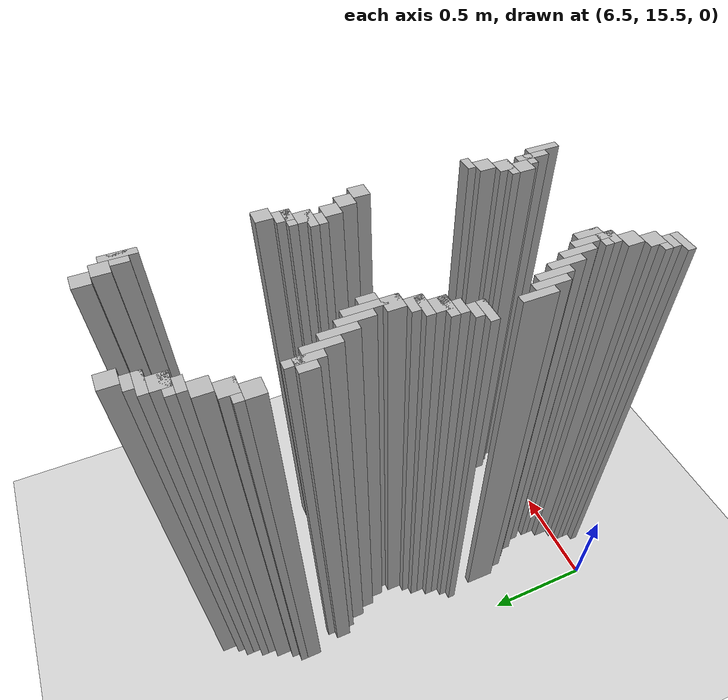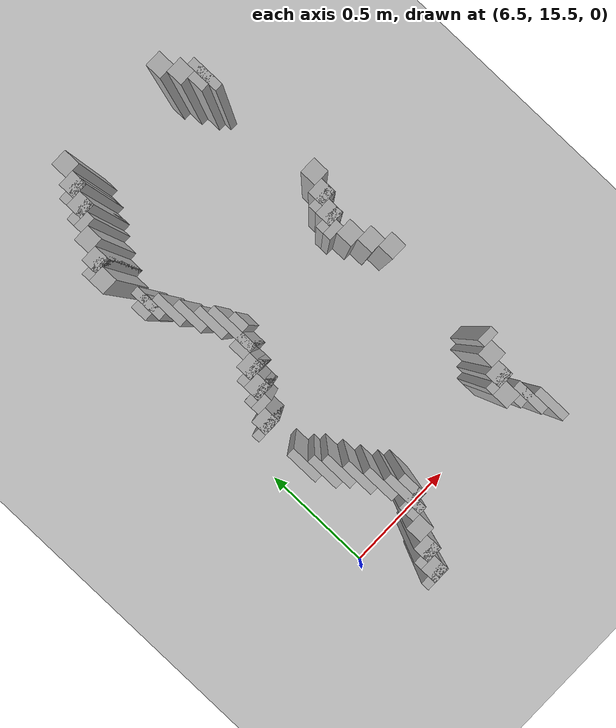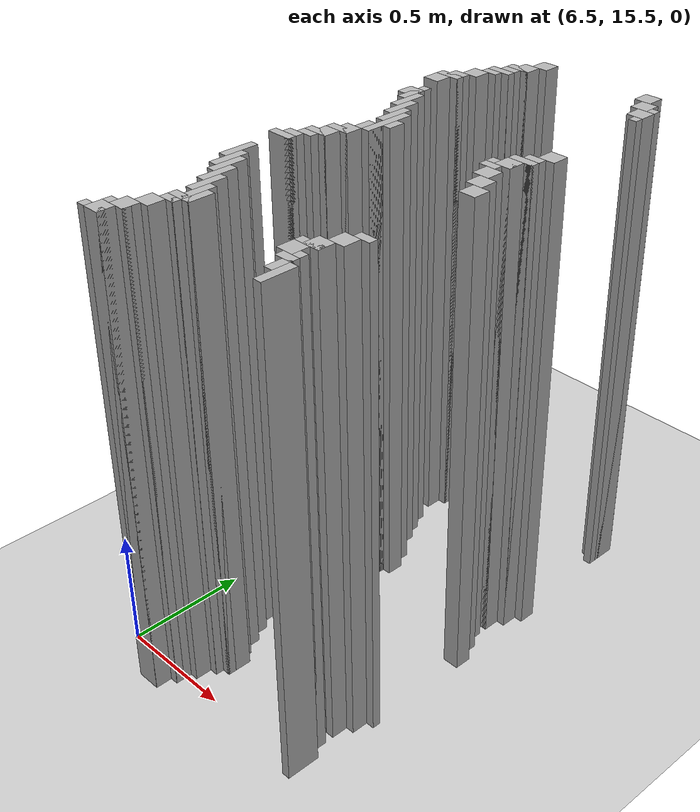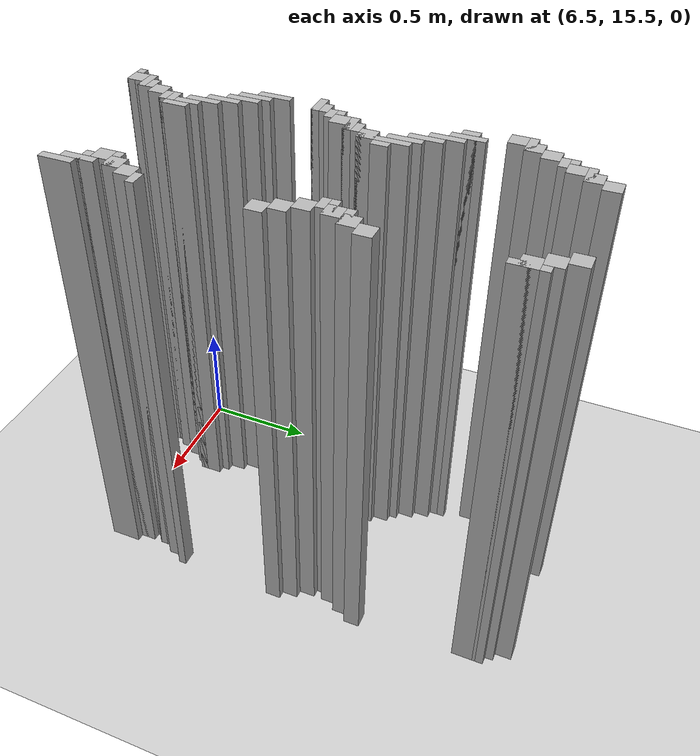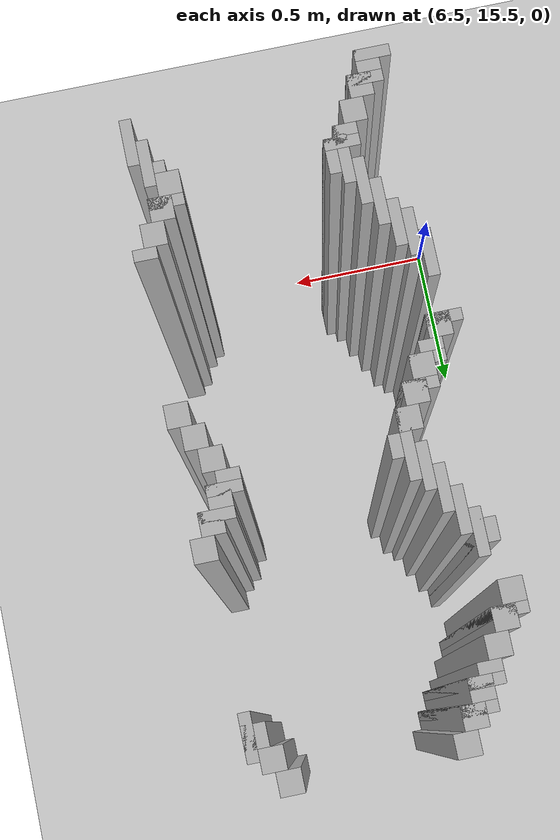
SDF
<sdf version="1.6">
 <world name="slam_world">
  <model name="ground_plane">
   <static>true</static>
   <link name="link">
    <collision name="collision">
     <geometry><plane><normal>0 0 1</normal><size>100 100</size></plane></geometry>
    </collision>
    <visual name="visual">
     <geometry><plane><normal>0 0 1</normal><size>100 100</size></plane></geometry>
     <material>
      <ambient>0.8 0.8 0.8 1</ambient>
      <diffuse>0.8 0.8 0.8 1</diffuse>
      <specular>0.8 0.8 0.8 1</specular>
     </material>
    </visual>
   </link>
  </model>
  <model name="wall_4">
   <static>true</static>
   <pose>6.890951276102088 17.366589327146173 1.0 0 0 0</pose>
   <link name="link">
    <collision name="collision">
     <geometry><box><size>0.06960556844547564 0.06960556844547564 2.0</size></box></geometry>
    </collision>
    <visual name="visual">
     <geometry><box><size>0.06960556844547564 0.06960556844547564 2.0</size></box></geometry>
     <material><ambient>0.5 0.5 0.5 1</ambient><diffuse>0.7 0.7 0.7 1</diffuse></material>
    </visual>
   </link>
  </model>
  <model name="wall_5">
   <static>true</static>
   <pose>7.378190255220417 17.366589327146173 1.0 0 0 0</pose>
   <link name="link">
    <collision name="collision">
     <geometry><box><size>0.06960556844547564 0.06960556844547564 2.0</size></box></geometry>
    </collision>
    <visual name="visual">
     <geometry><box><size>0.06960556844547564 0.06960556844547564 2.0</size></box></geometry>
     <material><ambient>0.5 0.5 0.5 1</ambient><diffuse>0.7 0.7 0.7 1</diffuse></material>
    </visual>
   </link>
  </model>
  <model name="wall_19">
   <static>true</static>
   <pose>6.85614849187935 17.296983758700694 1.0 0 0 0</pose>
   <link name="link">
    <collision name="collision">
     <geometry><box><size>0.06960556844547564 0.06960556844547564 2.0</size></box></geometry>
    </collision>
    <visual name="visual">
     <geometry><box><size>0.06960556844547564 0.06960556844547564 2.0</size></box></geometry>
     <material><ambient>0.5 0.5 0.5 1</ambient><diffuse>0.7 0.7 0.7 1</diffuse></material>
    </visual>
   </link>
  </model>
  <model name="wall_20">
   <static>true</static>
   <pose>7.412993039443156 17.296983758700694 1.0 0 0 0</pose>
   <link name="link">
    <collision name="collision">
     <geometry><box><size>0.06960556844547564 0.06960556844547564 2.0</size></box></geometry>
    </collision>
    <visual name="visual">
     <geometry><box><size>0.06960556844547564 0.06960556844547564 2.0</size></box></geometry>
     <material><ambient>0.5 0.5 0.5 1</ambient><diffuse>0.7 0.7 0.7 1</diffuse></material>
    </visual>
   </link>
  </model>
  <model name="wall_39">
   <static>true</static>
   <pose>6.838747099767981 17.279582366589327 1.0 0 0 0</pose>
   <link name="link">
    <collision name="collision">
     <geometry><box><size>0.10440835266821345 0.03480278422273782 2.0</size></box></geometry>
    </collision>
    <visual name="visual">
     <geometry><box><size>0.10440835266821345 0.03480278422273782 2.0</size></box></geometry>
     <material><ambient>0.5 0.5 0.5 1</ambient><diffuse>0.7 0.7 0.7 1</diffuse></material>
    </visual>
   </link>
  </model>
  <model name="wall_40">
   <static>true</static>
   <pose>7.465197215777262 17.22737819025522 1.0 0 0 0</pose>
   <link name="link">
    <collision name="collision">
     <geometry><box><size>0.03480278422273782 0.13921113689095127 2.0</size></box></geometry>
    </collision>
    <visual name="visual">
     <geometry><box><size>0.03480278422273782 0.13921113689095127 2.0</size></box></geometry>
     <material><ambient>0.5 0.5 0.5 1</ambient><diffuse>0.7 0.7 0.7 1</diffuse></material>
    </visual>
   </link>
  </model>
  <model name="wall_59">
   <static>true</static>
   <pose>6.821345707656612 17.22737819025522 1.0 0 0 0</pose>
   <link name="link">
    <collision name="collision">
     <geometry><box><size>0.06960556844547564 0.06960556844547564 2.0</size></box></geometry>
    </collision>
    <visual name="visual">
     <geometry><box><size>0.06960556844547564 0.06960556844547564 2.0</size></box></geometry>
     <material><ambient>0.5 0.5 0.5 1</ambient><diffuse>0.7 0.7 0.7 1</diffuse></material>
    </visual>
   </link>
  </model>
  <model name="wall_60">
   <static>true</static>
   <pose>7.447795823665893 17.22737819025522 1.0 0 0 0</pose>
   <link name="link">
    <collision name="collision">
     <geometry><box><size>0.06960556844547564 0.06960556844547564 2.0</size></box></geometry>
    </collision>
    <visual name="visual">
     <geometry><box><size>0.06960556844547564 0.06960556844547564 2.0</size></box></geometry>
     <material><ambient>0.5 0.5 0.5 1</ambient><diffuse>0.7 0.7 0.7 1</diffuse></material>
    </visual>
   </link>
  </model>
  <model name="wall_79">
   <static>true</static>
   <pose>6.803944315545244 17.209976798143853 1.0 0 0 0</pose>
   <link name="link">
    <collision name="collision">
     <geometry><box><size>0.10440835266821345 0.03480278422273782 2.0</size></box></geometry>
    </collision>
    <visual name="visual">
     <geometry><box><size>0.10440835266821345 0.03480278422273782 2.0</size></box></geometry>
     <material><ambient>0.5 0.5 0.5 1</ambient><diffuse>0.7 0.7 0.7 1</diffuse></material>
    </visual>
   </link>
  </model>
  <model name="wall_95">
   <static>true</static>
   <pose>6.786542923433874 17.17517401392111 1.0 0 0 0</pose>
   <link name="link">
    <collision name="collision">
     <geometry><box><size>0.06960556844547564 0.03480278422273782 2.0</size></box></geometry>
    </collision>
    <visual name="visual">
     <geometry><box><size>0.06960556844547564 0.03480278422273782 2.0</size></box></geometry>
     <material><ambient>0.5 0.5 0.5 1</ambient><diffuse>0.7 0.7 0.7 1</diffuse></material>
    </visual>
   </link>
  </model>
  <model name="wall_109">
   <static>true</static>
   <pose>6.751740139211137 17.122969837587007 1.0 0 0 0</pose>
   <link name="link">
    <collision name="collision">
     <geometry><box><size>0.06960556844547564 0.06960556844547564 2.0</size></box></geometry>
    </collision>
    <visual name="visual">
     <geometry><box><size>0.06960556844547564 0.06960556844547564 2.0</size></box></geometry>
     <material><ambient>0.5 0.5 0.5 1</ambient><diffuse>0.7 0.7 0.7 1</diffuse></material>
    </visual>
   </link>
  </model>
  <model name="wall_129">
   <static>true</static>
   <pose>6.716937354988398 17.053364269141532 1.0 0 0 0</pose>
   <link name="link">
    <collision name="collision">
     <geometry><box><size>0.06960556844547564 0.06960556844547564 2.0</size></box></geometry>
    </collision>
    <visual name="visual">
     <geometry><box><size>0.06960556844547564 0.06960556844547564 2.0</size></box></geometry>
     <material><ambient>0.5 0.5 0.5 1</ambient><diffuse>0.7 0.7 0.7 1</diffuse></material>
    </visual>
   </link>
  </model>
  <model name="wall_149">
   <static>true</static>
   <pose>6.69953596287703 17.035962877030162 1.0 0 0 0</pose>
   <link name="link">
    <collision name="collision">
     <geometry><box><size>0.10440835266821345 0.03480278422273782 2.0</size></box></geometry>
    </collision>
    <visual name="visual">
     <geometry><box><size>0.10440835266821345 0.03480278422273782 2.0</size></box></geometry>
     <material><ambient>0.5 0.5 0.5 1</ambient><diffuse>0.7 0.7 0.7 1</diffuse></material>
    </visual>
   </link>
  </model>
  <model name="wall_165">
   <static>true</static>
   <pose>6.682134570765661 16.983758700696054 1.0 0 0 0</pose>
   <link name="link">
    <collision name="collision">
     <geometry><box><size>0.06960556844547564 0.06960556844547564 2.0</size></box></geometry>
    </collision>
    <visual name="visual">
     <geometry><box><size>0.06960556844547564 0.06960556844547564 2.0</size></box></geometry>
     <material><ambient>0.5 0.5 0.5 1</ambient><diffuse>0.7 0.7 0.7 1</diffuse></material>
    </visual>
   </link>
  </model>
  <model name="wall_206">
   <static>true</static>
   <pose>6.734338747099768 16.809744779582367 1.0 0 0 0</pose>
   <link name="link">
    <collision name="collision">
     <geometry><box><size>0.03480278422273782 0.13921113689095127 2.0</size></box></geometry>
    </collision>
    <visual name="visual">
     <geometry><box><size>0.03480278422273782 0.13921113689095127 2.0</size></box></geometry>
     <material><ambient>0.5 0.5 0.5 1</ambient><diffuse>0.7 0.7 0.7 1</diffuse></material>
    </visual>
   </link>
  </model>
  <model name="wall_216">
   <static>true</static>
   <pose>6.716937354988398 16.809744779582367 1.0 0 0 0</pose>
   <link name="link">
    <collision name="collision">
     <geometry><box><size>0.06960556844547564 0.06960556844547564 2.0</size></box></geometry>
    </collision>
    <visual name="visual">
     <geometry><box><size>0.06960556844547564 0.06960556844547564 2.0</size></box></geometry>
     <material><ambient>0.5 0.5 0.5 1</ambient><diffuse>0.7 0.7 0.7 1</diffuse></material>
    </visual>
   </link>
  </model>
  <model name="wall_226">
   <static>true</static>
   <pose>6.769141531322505 16.74013921113689 1.0 0 0 0</pose>
   <link name="link">
    <collision name="collision">
     <geometry><box><size>0.03480278422273782 0.13921113689095127 2.0</size></box></geometry>
    </collision>
    <visual name="visual">
     <geometry><box><size>0.03480278422273782 0.13921113689095127 2.0</size></box></geometry>
     <material><ambient>0.5 0.5 0.5 1</ambient><diffuse>0.7 0.7 0.7 1</diffuse></material>
    </visual>
   </link>
  </model>
  <model name="wall_242">
   <static>true</static>
   <pose>6.803944315545244 16.670533642691414 1.0 0 0 0</pose>
   <link name="link">
    <collision name="collision">
     <geometry><box><size>0.03480278422273782 0.13921113689095127 2.0</size></box></geometry>
    </collision>
    <visual name="visual">
     <geometry><box><size>0.03480278422273782 0.13921113689095127 2.0</size></box></geometry>
     <material><ambient>0.5 0.5 0.5 1</ambient><diffuse>0.7 0.7 0.7 1</diffuse></material>
    </visual>
   </link>
  </model>
  <model name="wall_243">
   <static>true</static>
   <pose>7.48259860788863 16.70533642691415 1.0 0 0 0</pose>
   <link name="link">
    <collision name="collision">
     <geometry><box><size>0.06960556844547564 0.06960556844547564 2.0</size></box></geometry>
    </collision>
    <visual name="visual">
     <geometry><box><size>0.06960556844547564 0.06960556844547564 2.0</size></box></geometry>
     <material><ambient>0.5 0.5 0.5 1</ambient><diffuse>0.7 0.7 0.7 1</diffuse></material>
    </visual>
   </link>
  </model>
  <model name="wall_252">
   <static>true</static>
   <pose>6.838747099767981 16.60092807424594 1.0 0 0 0</pose>
   <link name="link">
    <collision name="collision">
     <geometry><box><size>0.03480278422273782 0.13921113689095127 2.0</size></box></geometry>
    </collision>
    <visual name="visual">
     <geometry><box><size>0.03480278422273782 0.13921113689095127 2.0</size></box></geometry>
     <material><ambient>0.5 0.5 0.5 1</ambient><diffuse>0.7 0.7 0.7 1</diffuse></material>
    </visual>
   </link>
  </model>
  <model name="wall_253">
   <static>true</static>
   <pose>7.447795823665893 16.635730858468676 1.0 0 0 0</pose>
   <link name="link">
    <collision name="collision">
     <geometry><box><size>0.06960556844547564 0.06960556844547564 2.0</size></box></geometry>
    </collision>
    <visual name="visual">
     <geometry><box><size>0.06960556844547564 0.06960556844547564 2.0</size></box></geometry>
     <material><ambient>0.5 0.5 0.5 1</ambient><diffuse>0.7 0.7 0.7 1</diffuse></material>
    </visual>
   </link>
  </model>
  <model name="wall_262">
   <static>true</static>
   <pose>6.8735498839907185 16.531322505800464 1.0 0 0 0</pose>
   <link name="link">
    <collision name="collision">
     <geometry><box><size>0.03480278422273782 0.2088167053364269 2.0</size></box></geometry>
    </collision>
    <visual name="visual">
     <geometry><box><size>0.03480278422273782 0.2088167053364269 2.0</size></box></geometry>
     <material><ambient>0.5 0.5 0.5 1</ambient><diffuse>0.7 0.7 0.7 1</diffuse></material>
    </visual>
   </link>
  </model>
  <model name="wall_263">
   <static>true</static>
   <pose>7.430394431554524 16.61832946635731 1.0 0 0 0</pose>
   <link name="link">
    <collision name="collision">
     <geometry><box><size>0.10440835266821345 0.03480278422273782 2.0</size></box></geometry>
    </collision>
    <visual name="visual">
     <geometry><box><size>0.10440835266821345 0.03480278422273782 2.0</size></box></geometry>
     <material><ambient>0.5 0.5 0.5 1</ambient><diffuse>0.7 0.7 0.7 1</diffuse></material>
    </visual>
   </link>
  </model>
  <model name="wall_271">
   <static>true</static>
   <pose>7.412993039443156 16.5661252900232 1.0 0 0 0</pose>
   <link name="link">
    <collision name="collision">
     <geometry><box><size>0.06960556844547564 0.06960556844547564 2.0</size></box></geometry>
    </collision>
    <visual name="visual">
     <geometry><box><size>0.06960556844547564 0.06960556844547564 2.0</size></box></geometry>
     <material><ambient>0.5 0.5 0.5 1</ambient><diffuse>0.7 0.7 0.7 1</diffuse></material>
    </visual>
   </link>
  </model>
  <model name="wall_279">
   <static>true</static>
   <pose>6.908352668213457 16.531322505800464 1.0 0 0 0</pose>
   <link name="link">
    <collision name="collision">
     <geometry><box><size>0.03480278422273782 0.06960556844547564 2.0</size></box></geometry>
    </collision>
    <visual name="visual">
     <geometry><box><size>0.03480278422273782 0.06960556844547564 2.0</size></box></geometry>
     <material><ambient>0.5 0.5 0.5 1</ambient><diffuse>0.7 0.7 0.7 1</diffuse></material>
    </visual>
   </link>
  </model>
  <model name="wall_280">
   <static>true</static>
   <pose>7.395591647331786 16.54872389791183 1.0 0 0 0</pose>
   <link name="link">
    <collision name="collision">
     <geometry><box><size>0.10440835266821345 0.03480278422273782 2.0</size></box></geometry>
    </collision>
    <visual name="visual">
     <geometry><box><size>0.10440835266821345 0.03480278422273782 2.0</size></box></geometry>
     <material><ambient>0.5 0.5 0.5 1</ambient><diffuse>0.7 0.7 0.7 1</diffuse></material>
    </visual>
   </link>
  </model>
  <model name="wall_290">
   <static>true</static>
   <pose>7.378190255220417 16.513921113689094 1.0 0 0 0</pose>
   <link name="link">
    <collision name="collision">
     <geometry><box><size>0.06960556844547564 0.03480278422273782 2.0</size></box></geometry>
    </collision>
    <visual name="visual">
     <geometry><box><size>0.06960556844547564 0.03480278422273782 2.0</size></box></geometry>
     <material><ambient>0.5 0.5 0.5 1</ambient><diffuse>0.7 0.7 0.7 1</diffuse></material>
    </visual>
   </link>
  </model>
  <model name="wall_298">
   <static>true</static>
   <pose>6.85614849187935 16.46171693735499 1.0 0 0 0</pose>
   <link name="link">
    <collision name="collision">
     <geometry><box><size>0.06960556844547564 0.06960556844547564 2.0</size></box></geometry>
    </collision>
    <visual name="visual">
     <geometry><box><size>0.06960556844547564 0.06960556844547564 2.0</size></box></geometry>
     <material><ambient>0.5 0.5 0.5 1</ambient><diffuse>0.7 0.7 0.7 1</diffuse></material>
    </visual>
   </link>
  </model>
  <model name="wall_299">
   <static>true</static>
   <pose>7.412993039443156 16.46171693735499 1.0 0 0 0</pose>
   <link name="link">
    <collision name="collision">
     <geometry><box><size>0.06960556844547564 0.06960556844547564 2.0</size></box></geometry>
    </collision>
    <visual name="visual">
     <geometry><box><size>0.06960556844547564 0.06960556844547564 2.0</size></box></geometry>
     <material><ambient>0.5 0.5 0.5 1</ambient><diffuse>0.7 0.7 0.7 1</diffuse></material>
    </visual>
   </link>
  </model>
  <model name="wall_321">
   <static>true</static>
   <pose>6.821345707656612 16.39211136890951 1.0 0 0 0</pose>
   <link name="link">
    <collision name="collision">
     <geometry><box><size>0.06960556844547564 0.06960556844547564 2.0</size></box></geometry>
    </collision>
    <visual name="visual">
     <geometry><box><size>0.06960556844547564 0.06960556844547564 2.0</size></box></geometry>
     <material><ambient>0.5 0.5 0.5 1</ambient><diffuse>0.7 0.7 0.7 1</diffuse></material>
    </visual>
   </link>
  </model>
  <model name="wall_322">
   <static>true</static>
   <pose>7.447795823665893 16.39211136890951 1.0 0 0 0</pose>
   <link name="link">
    <collision name="collision">
     <geometry><box><size>0.06960556844547564 0.06960556844547564 2.0</size></box></geometry>
    </collision>
    <visual name="visual">
     <geometry><box><size>0.06960556844547564 0.06960556844547564 2.0</size></box></geometry>
     <material><ambient>0.5 0.5 0.5 1</ambient><diffuse>0.7 0.7 0.7 1</diffuse></material>
    </visual>
   </link>
  </model>
  <model name="wall_334">
   <static>true</static>
   <pose>6.803944315545244 16.374709976798144 1.0 0 0 0</pose>
   <link name="link">
    <collision name="collision">
     <geometry><box><size>0.10440835266821345 0.03480278422273782 2.0</size></box></geometry>
    </collision>
    <visual name="visual">
     <geometry><box><size>0.10440835266821345 0.03480278422273782 2.0</size></box></geometry>
     <material><ambient>0.5 0.5 0.5 1</ambient><diffuse>0.7 0.7 0.7 1</diffuse></material>
    </visual>
   </link>
  </model>
  <model name="wall_347">
   <static>true</static>
   <pose>6.786542923433874 16.322505800464036 1.0 0 0 0</pose>
   <link name="link">
    <collision name="collision">
     <geometry><box><size>0.06960556844547564 0.06960556844547564 2.0</size></box></geometry>
    </collision>
    <visual name="visual">
     <geometry><box><size>0.06960556844547564 0.06960556844547564 2.0</size></box></geometry>
     <material><ambient>0.5 0.5 0.5 1</ambient><diffuse>0.7 0.7 0.7 1</diffuse></material>
    </visual>
   </link>
  </model>
  <model name="wall_348">
   <static>true</static>
   <pose>7.48259860788863 16.322505800464036 1.0 0 0 0</pose>
   <link name="link">
    <collision name="collision">
     <geometry><box><size>0.06960556844547564 0.06960556844547564 2.0</size></box></geometry>
    </collision>
    <visual name="visual">
     <geometry><box><size>0.06960556844547564 0.06960556844547564 2.0</size></box></geometry>
     <material><ambient>0.5 0.5 0.5 1</ambient><diffuse>0.7 0.7 0.7 1</diffuse></material>
    </visual>
   </link>
  </model>
  <model name="wall_360">
   <static>true</static>
   <pose>6.769141531322505 16.30510440835267 1.0 0 0 0</pose>
   <link name="link">
    <collision name="collision">
     <geometry><box><size>0.10440835266821345 0.03480278422273782 2.0</size></box></geometry>
    </collision>
    <visual name="visual">
     <geometry><box><size>0.10440835266821345 0.03480278422273782 2.0</size></box></geometry>
     <material><ambient>0.5 0.5 0.5 1</ambient><diffuse>0.7 0.7 0.7 1</diffuse></material>
    </visual>
   </link>
  </model>
  <model name="wall_370">
   <static>true</static>
   <pose>6.751740139211137 16.270301624129928 1.0 0 0 0</pose>
   <link name="link">
    <collision name="collision">
     <geometry><box><size>0.06960556844547564 0.03480278422273782 2.0</size></box></geometry>
    </collision>
    <visual name="visual">
     <geometry><box><size>0.06960556844547564 0.03480278422273782 2.0</size></box></geometry>
     <material><ambient>0.5 0.5 0.5 1</ambient><diffuse>0.7 0.7 0.7 1</diffuse></material>
    </visual>
   </link>
  </model>
  <model name="wall_378">
   <static>true</static>
   <pose>6.716937354988398 16.218097447795824 1.0 0 0 0</pose>
   <link name="link">
    <collision name="collision">
     <geometry><box><size>0.06960556844547564 0.06960556844547564 2.0</size></box></geometry>
    </collision>
    <visual name="visual">
     <geometry><box><size>0.06960556844547564 0.06960556844547564 2.0</size></box></geometry>
     <material><ambient>0.5 0.5 0.5 1</ambient><diffuse>0.7 0.7 0.7 1</diffuse></material>
    </visual>
   </link>
  </model>
  <model name="wall_388">
   <static>true</static>
   <pose>6.69953596287703 16.200696055684453 1.0 0 0 0</pose>
   <link name="link">
    <collision name="collision">
     <geometry><box><size>0.10440835266821345 0.03480278422273782 2.0</size></box></geometry>
    </collision>
    <visual name="visual">
     <geometry><box><size>0.10440835266821345 0.03480278422273782 2.0</size></box></geometry>
     <material><ambient>0.5 0.5 0.5 1</ambient><diffuse>0.7 0.7 0.7 1</diffuse></material>
    </visual>
   </link>
  </model>
  <model name="wall_435">
   <static>true</static>
   <pose>6.69953596287703 16.009280742459396 1.0 0 0 0</pose>
   <link name="link">
    <collision name="collision">
     <geometry><box><size>0.03480278422273782 0.13921113689095127 2.0</size></box></geometry>
    </collision>
    <visual name="visual">
     <geometry><box><size>0.03480278422273782 0.13921113689095127 2.0</size></box></geometry>
     <material><ambient>0.5 0.5 0.5 1</ambient><diffuse>0.7 0.7 0.7 1</diffuse></material>
    </visual>
   </link>
  </model>
  <model name="wall_465">
   <static>true</static>
   <pose>6.734338747099768 15.93967517401392 1.0 0 0 0</pose>
   <link name="link">
    <collision name="collision">
     <geometry><box><size>0.03480278422273782 0.13921113689095127 2.0</size></box></geometry>
    </collision>
    <visual name="visual">
     <geometry><box><size>0.03480278422273782 0.13921113689095127 2.0</size></box></geometry>
     <material><ambient>0.5 0.5 0.5 1</ambient><diffuse>0.7 0.7 0.7 1</diffuse></material>
    </visual>
   </link>
  </model>
  <model name="wall_480">
   <static>true</static>
   <pose>6.769141531322505 15.904872389791183 1.0 0 0 0</pose>
   <link name="link">
    <collision name="collision">
     <geometry><box><size>0.03480278422273782 0.13921113689095127 2.0</size></box></geometry>
    </collision>
    <visual name="visual">
     <geometry><box><size>0.03480278422273782 0.13921113689095127 2.0</size></box></geometry>
     <material><ambient>0.5 0.5 0.5 1</ambient><diffuse>0.7 0.7 0.7 1</diffuse></material>
    </visual>
   </link>
  </model>
  <model name="wall_504">
   <static>true</static>
   <pose>6.803944315545244 15.835266821345707 1.0 0 0 0</pose>
   <link name="link">
    <collision name="collision">
     <geometry><box><size>0.03480278422273782 0.13921113689095127 2.0</size></box></geometry>
    </collision>
    <visual name="visual">
     <geometry><box><size>0.03480278422273782 0.13921113689095127 2.0</size></box></geometry>
     <material><ambient>0.5 0.5 0.5 1</ambient><diffuse>0.7 0.7 0.7 1</diffuse></material>
    </visual>
   </link>
  </model>
  <model name="wall_517">
   <static>true</static>
   <pose>7.48259860788863 15.852668213457076 1.0 0 0 0</pose>
   <link name="link">
    <collision name="collision">
     <geometry><box><size>0.06960556844547564 0.03480278422273782 2.0</size></box></geometry>
    </collision>
    <visual name="visual">
     <geometry><box><size>0.06960556844547564 0.03480278422273782 2.0</size></box></geometry>
     <material><ambient>0.5 0.5 0.5 1</ambient><diffuse>0.7 0.7 0.7 1</diffuse></material>
    </visual>
   </link>
  </model>
  <model name="wall_527">
   <static>true</static>
   <pose>6.838747099767981 15.765661252900232 1.0 0 0 0</pose>
   <link name="link">
    <collision name="collision">
     <geometry><box><size>0.03480278422273782 0.13921113689095127 2.0</size></box></geometry>
    </collision>
    <visual name="visual">
     <geometry><box><size>0.03480278422273782 0.13921113689095127 2.0</size></box></geometry>
     <material><ambient>0.5 0.5 0.5 1</ambient><diffuse>0.7 0.7 0.7 1</diffuse></material>
    </visual>
   </link>
  </model>
  <model name="wall_528">
   <static>true</static>
   <pose>7.447795823665893 15.80046403712297 1.0 0 0 0</pose>
   <link name="link">
    <collision name="collision">
     <geometry><box><size>0.06960556844547564 0.06960556844547564 2.0</size></box></geometry>
    </collision>
    <visual name="visual">
     <geometry><box><size>0.06960556844547564 0.06960556844547564 2.0</size></box></geometry>
     <material><ambient>0.5 0.5 0.5 1</ambient><diffuse>0.7 0.7 0.7 1</diffuse></material>
    </visual>
   </link>
  </model>
  <model name="wall_542">
   <static>true</static>
   <pose>6.8735498839907185 15.678654292343387 1.0 0 0 0</pose>
   <link name="link">
    <collision name="collision">
     <geometry><box><size>0.03480278422273782 0.17401392111368907 2.0</size></box></geometry>
    </collision>
    <visual name="visual">
     <geometry><box><size>0.03480278422273782 0.17401392111368907 2.0</size></box></geometry>
     <material><ambient>0.5 0.5 0.5 1</ambient><diffuse>0.7 0.7 0.7 1</diffuse></material>
    </visual>
   </link>
  </model>
  <model name="wall_543">
   <static>true</static>
   <pose>7.412993039443156 15.730858468677493 1.0 0 0 0</pose>
   <link name="link">
    <collision name="collision">
     <geometry><box><size>0.06960556844547564 0.06960556844547564 2.0</size></box></geometry>
    </collision>
    <visual name="visual">
     <geometry><box><size>0.06960556844547564 0.06960556844547564 2.0</size></box></geometry>
     <material><ambient>0.5 0.5 0.5 1</ambient><diffuse>0.7 0.7 0.7 1</diffuse></material>
    </visual>
   </link>
  </model>
  <model name="wall_557">
   <static>true</static>
   <pose>6.908352668213457 15.678654292343387 1.0 0 0 0</pose>
   <link name="link">
    <collision name="collision">
     <geometry><box><size>0.03480278422273782 0.10440835266821345 2.0</size></box></geometry>
    </collision>
    <visual name="visual">
     <geometry><box><size>0.03480278422273782 0.10440835266821345 2.0</size></box></geometry>
     <material><ambient>0.5 0.5 0.5 1</ambient><diffuse>0.7 0.7 0.7 1</diffuse></material>
    </visual>
   </link>
  </model>
  <model name="wall_558">
   <static>true</static>
   <pose>7.395591647331786 15.713457076566124 1.0 0 0 0</pose>
   <link name="link">
    <collision name="collision">
     <geometry><box><size>0.10440835266821345 0.03480278422273782 2.0</size></box></geometry>
    </collision>
    <visual name="visual">
     <geometry><box><size>0.10440835266821345 0.03480278422273782 2.0</size></box></geometry>
     <material><ambient>0.5 0.5 0.5 1</ambient><diffuse>0.7 0.7 0.7 1</diffuse></material>
    </visual>
   </link>
  </model>
  <model name="wall_569">
   <static>true</static>
   <pose>7.378190255220417 15.661252900232018 1.0 0 0 0</pose>
   <link name="link">
    <collision name="collision">
     <geometry><box><size>0.06960556844547564 0.06960556844547564 2.0</size></box></geometry>
    </collision>
    <visual name="visual">
     <geometry><box><size>0.06960556844547564 0.06960556844547564 2.0</size></box></geometry>
     <material><ambient>0.5 0.5 0.5 1</ambient><diffuse>0.7 0.7 0.7 1</diffuse></material>
    </visual>
   </link>
  </model>
  <model name="wall_583">
   <static>true</static>
   <pose>6.8735498839907185 15.64385150812065 1.0 0 0 0</pose>
   <link name="link">
    <collision name="collision">
     <geometry><box><size>0.10440835266821345 0.03480278422273782 2.0</size></box></geometry>
    </collision>
    <visual name="visual">
     <geometry><box><size>0.10440835266821345 0.03480278422273782 2.0</size></box></geometry>
     <material><ambient>0.5 0.5 0.5 1</ambient><diffuse>0.7 0.7 0.7 1</diffuse></material>
    </visual>
   </link>
  </model>
  <model name="wall_584">
   <static>true</static>
   <pose>7.430394431554524 15.591647331786543 1.0 0 0 0</pose>
   <link name="link">
    <collision name="collision">
     <geometry><box><size>0.03480278422273782 0.13921113689095127 2.0</size></box></geometry>
    </collision>
    <visual name="visual">
     <geometry><box><size>0.03480278422273782 0.13921113689095127 2.0</size></box></geometry>
     <material><ambient>0.5 0.5 0.5 1</ambient><diffuse>0.7 0.7 0.7 1</diffuse></material>
    </visual>
   </link>
  </model>
  <model name="wall_602">
   <static>true</static>
   <pose>6.85614849187935 15.609048723897912 1.0 0 0 0</pose>
   <link name="link">
    <collision name="collision">
     <geometry><box><size>0.06960556844547564 0.03480278422273782 2.0</size></box></geometry>
    </collision>
    <visual name="visual">
     <geometry><box><size>0.06960556844547564 0.03480278422273782 2.0</size></box></geometry>
     <material><ambient>0.5 0.5 0.5 1</ambient><diffuse>0.7 0.7 0.7 1</diffuse></material>
    </visual>
   </link>
  </model>
  <model name="wall_603">
   <static>true</static>
   <pose>7.412993039443156 15.609048723897912 1.0 0 0 0</pose>
   <link name="link">
    <collision name="collision">
     <geometry><box><size>0.06960556844547564 0.03480278422273782 2.0</size></box></geometry>
    </collision>
    <visual name="visual">
     <geometry><box><size>0.06960556844547564 0.03480278422273782 2.0</size></box></geometry>
     <material><ambient>0.5 0.5 0.5 1</ambient><diffuse>0.7 0.7 0.7 1</diffuse></material>
    </visual>
   </link>
  </model>
  <model name="wall_618">
   <static>true</static>
   <pose>6.821345707656612 15.556844547563804 1.0 0 0 0</pose>
   <link name="link">
    <collision name="collision">
     <geometry><box><size>0.06960556844547564 0.06960556844547564 2.0</size></box></geometry>
    </collision>
    <visual name="visual">
     <geometry><box><size>0.06960556844547564 0.06960556844547564 2.0</size></box></geometry>
     <material><ambient>0.5 0.5 0.5 1</ambient><diffuse>0.7 0.7 0.7 1</diffuse></material>
    </visual>
   </link>
  </model>
  <model name="wall_619">
   <static>true</static>
   <pose>7.465197215777262 15.522041763341067 1.0 0 0 0</pose>
   <link name="link">
    <collision name="collision">
     <geometry><box><size>0.03480278422273782 0.13921113689095127 2.0</size></box></geometry>
    </collision>
    <visual name="visual">
     <geometry><box><size>0.03480278422273782 0.13921113689095127 2.0</size></box></geometry>
     <material><ambient>0.5 0.5 0.5 1</ambient><diffuse>0.7 0.7 0.7 1</diffuse></material>
    </visual>
   </link>
  </model>
  <model name="wall_634">
   <static>true</static>
   <pose>6.786542923433874 15.48723897911833 1.0 0 0 0</pose>
   <link name="link">
    <collision name="collision">
     <geometry><box><size>0.06960556844547564 0.06960556844547564 2.0</size></box></geometry>
    </collision>
    <visual name="visual">
     <geometry><box><size>0.06960556844547564 0.06960556844547564 2.0</size></box></geometry>
     <material><ambient>0.5 0.5 0.5 1</ambient><diffuse>0.7 0.7 0.7 1</diffuse></material>
    </visual>
   </link>
  </model>
  <model name="wall_650">
   <static>true</static>
   <pose>6.769141531322505 15.46983758700696 1.0 0 0 0</pose>
   <link name="link">
    <collision name="collision">
     <geometry><box><size>0.10440835266821345 0.03480278422273782 2.0</size></box></geometry>
    </collision>
    <visual name="visual">
     <geometry><box><size>0.10440835266821345 0.03480278422273782 2.0</size></box></geometry>
     <material><ambient>0.5 0.5 0.5 1</ambient><diffuse>0.7 0.7 0.7 1</diffuse></material>
    </visual>
   </link>
  </model>
  <model name="wall_664">
   <static>true</static>
   <pose>6.751740139211137 15.417633410672853 1.0 0 0 0</pose>
   <link name="link">
    <collision name="collision">
     <geometry><box><size>0.06960556844547564 0.06960556844547564 2.0</size></box></geometry>
    </collision>
    <visual name="visual">
     <geometry><box><size>0.06960556844547564 0.06960556844547564 2.0</size></box></geometry>
     <material><ambient>0.5 0.5 0.5 1</ambient><diffuse>0.7 0.7 0.7 1</diffuse></material>
    </visual>
   </link>
  </model>
  <model name="wall_677">
   <static>true</static>
   <pose>6.734338747099768 15.400232018561484 1.0 0 0 0</pose>
   <link name="link">
    <collision name="collision">
     <geometry><box><size>0.10440835266821345 0.03480278422273782 2.0</size></box></geometry>
    </collision>
    <visual name="visual">
     <geometry><box><size>0.10440835266821345 0.03480278422273782 2.0</size></box></geometry>
     <material><ambient>0.5 0.5 0.5 1</ambient><diffuse>0.7 0.7 0.7 1</diffuse></material>
    </visual>
   </link>
  </model>
 </world>
</sdf>
